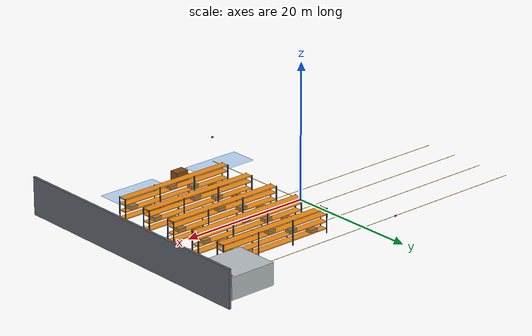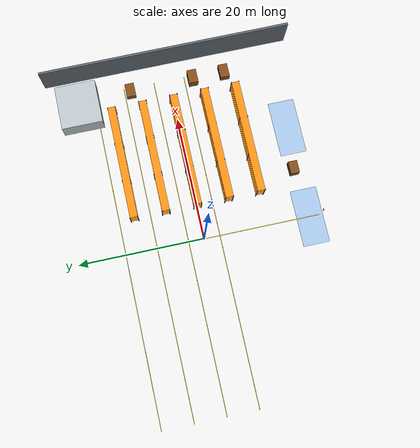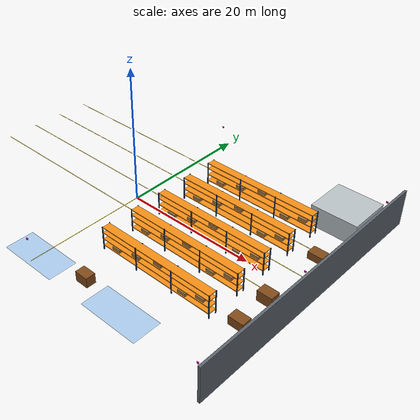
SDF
<sdf version="1.7">
 <world name="real_warehouse">
  <include><uri>model://sun</uri></include>
  <model name="east_wall">
   <static>true</static>
   <pose>30.0 0.0 2.75 0 0 0</pose>
   <link name="link">
    <collision name="collision">
     <geometry><box><size>0.35 40.0 5.5</size></box></geometry>
     <surface><friction><ode><mu>0.9</mu><mu2>0.9</mu2></ode></friction></surface>
    </collision>
    <visual name="visual">
     <geometry><box><size>0.35 40.0 5.5</size></box></geometry>
     <material><ambient>0.36 0.39 0.42 1</ambient><diffuse>0.36 0.39 0.42 1</diffuse></material>
    </visual>
   </link>
  </model>
  <model name="battery_room">
   <static>true</static>
   <pose>24.7 15.0 1.6 0 0 0</pose>
   <link name="link">
    <collision name="collision">
     <geometry><box><size>7.0 6.5 3.2</size></box></geometry>
     <surface><friction><ode><mu>0.9</mu><mu2>0.9</mu2></ode></friction></surface>
    </collision>
    <visual name="visual">
     <geometry><box><size>7.0 6.5 3.2</size></box></geometry>
     <material><ambient>0.72 0.75 0.77 1</ambient><diffuse>0.72 0.75 0.77 1</diffuse></material>
    </visual>
   </link>
  </model>
  <model name="rack_1_east">
   <static>true</static>
   <pose>14.0 -10.0 0 0 0 0</pose>
   <link name="rack">
    <collision name="rack_footprint">
     <pose>0 0 1.8 0 0 0</pose>
     <geometry><box><size>18.0 1.2 3.6</size></box></geometry>
    </collision>
    <visual name="upright_0_0">
     <pose>-9.0 -0.6 1.8 0 0 0</pose>
     <geometry><box><size>0.12 0.12 3.6</size></box></geometry>
     <material><ambient>0.12 0.24 0.42 1</ambient><diffuse>0.12 0.24 0.42 1</diffuse></material>
    </visual>
    <visual name="upright_0_1">
     <pose>-9.0 0.6 1.8 0 0 0</pose>
     <geometry><box><size>0.12 0.12 3.6</size></box></geometry>
     <material><ambient>0.12 0.24 0.42 1</ambient><diffuse>0.12 0.24 0.42 1</diffuse></material>
    </visual>
    <visual name="upright_1_0">
     <pose>-3.0 -0.6 1.8 0 0 0</pose>
     <geometry><box><size>0.12 0.12 3.6</size></box></geometry>
     <material><ambient>0.12 0.24 0.42 1</ambient><diffuse>0.12 0.24 0.42 1</diffuse></material>
    </visual>
    <visual name="upright_1_1">
     <pose>-3.0 0.6 1.8 0 0 0</pose>
     <geometry><box><size>0.12 0.12 3.6</size></box></geometry>
     <material><ambient>0.12 0.24 0.42 1</ambient><diffuse>0.12 0.24 0.42 1</diffuse></material>
    </visual>
    <visual name="upright_2_0">
     <pose>3.0 -0.6 1.8 0 0 0</pose>
     <geometry><box><size>0.12 0.12 3.6</size></box></geometry>
     <material><ambient>0.12 0.24 0.42 1</ambient><diffuse>0.12 0.24 0.42 1</diffuse></material>
    </visual>
    <visual name="upright_2_1">
     <pose>3.0 0.6 1.8 0 0 0</pose>
     <geometry><box><size>0.12 0.12 3.6</size></box></geometry>
     <material><ambient>0.12 0.24 0.42 1</ambient><diffuse>0.12 0.24 0.42 1</diffuse></material>
    </visual>
    <visual name="upright_3_0">
     <pose>9.0 -0.6 1.8 0 0 0</pose>
     <geometry><box><size>0.12 0.12 3.6</size></box></geometry>
     <material><ambient>0.12 0.24 0.42 1</ambient><diffuse>0.12 0.24 0.42 1</diffuse></material>
    </visual>
    <visual name="upright_3_1">
     <pose>9.0 0.6 1.8 0 0 0</pose>
     <geometry><box><size>0.12 0.12 3.6</size></box></geometry>
     <material><ambient>0.12 0.24 0.42 1</ambient><diffuse>0.12 0.24 0.42 1</diffuse></material>
    </visual>
    <visual name="beam_0">
     <pose>0 0 0.65 0 0 0</pose>
     <geometry><box><size>18.0 1.2 0.12</size></box></geometry>
     <material><ambient>0.95 0.55 0.08 1</ambient><diffuse>0.95 0.55 0.08 1</diffuse></material>
    </visual>
    <visual name="beam_1">
     <pose>0 0 1.65 0 0 0</pose>
     <geometry><box><size>18.0 1.2 0.12</size></box></geometry>
     <material><ambient>0.95 0.55 0.08 1</ambient><diffuse>0.95 0.55 0.08 1</diffuse></material>
    </visual>
    <visual name="beam_2">
     <pose>0 0 2.65 0 0 0</pose>
     <geometry><box><size>18.0 1.2 0.12</size></box></geometry>
     <material><ambient>0.95 0.55 0.08 1</ambient><diffuse>0.95 0.55 0.08 1</diffuse></material>
    </visual>
    <visual name="beam_3">
     <pose>0 0 3.5 0 0 0</pose>
     <geometry><box><size>18.0 1.2 0.12</size></box></geometry>
     <material><ambient>0.95 0.55 0.08 1</ambient><diffuse>0.95 0.55 0.08 1</diffuse></material>
    </visual>
    <visual name="load_0">
     <pose>-6.84 0 0.92 0 0 0</pose>
     <geometry><box><size>1.25 0.9359999999999999 0.48</size></box></geometry>
     <material><ambient>0.67 0.48 0.25 1</ambient><diffuse>0.67 0.48 0.25 1</diffuse></material>
    </visual>
    <visual name="load_1">
     <pose>-3.2399999999999998 0 1.92 0 0 0</pose>
     <geometry><box><size>1.25 0.9359999999999999 0.48</size></box></geometry>
     <material><ambient>0.67 0.48 0.25 1</ambient><diffuse>0.67 0.48 0.25 1</diffuse></material>
    </visual>
    <visual name="load_2">
     <pose>0.54 0 2.92 0 0 0</pose>
     <geometry><box><size>1.25 0.9359999999999999 0.48</size></box></geometry>
     <material><ambient>0.67 0.48 0.25 1</ambient><diffuse>0.67 0.48 0.25 1</diffuse></material>
    </visual>
    <visual name="load_3">
     <pose>4.5 0 0.92 0 0 0</pose>
     <geometry><box><size>1.25 0.9359999999999999 0.48</size></box></geometry>
     <material><ambient>0.67 0.48 0.25 1</ambient><diffuse>0.67 0.48 0.25 1</diffuse></material>
    </visual>
    <visual name="load_4">
     <pose>7.38 0 1.92 0 0 0</pose>
     <geometry><box><size>1.25 0.9359999999999999 0.48</size></box></geometry>
     <material><ambient>0.67 0.48 0.25 1</ambient><diffuse>0.67 0.48 0.25 1</diffuse></material>
    </visual>
   </link>
  </model>
  <model name="rack_2_east">
   <static>true</static>
   <pose>14.0 -5.0 0 0 0 0</pose>
   <link name="rack">
    <collision name="rack_footprint">
     <pose>0 0 1.8 0 0 0</pose>
     <geometry><box><size>18.0 1.2 3.6</size></box></geometry>
    </collision>
    <visual name="upright_0_0">
     <pose>-9.0 -0.6 1.8 0 0 0</pose>
     <geometry><box><size>0.12 0.12 3.6</size></box></geometry>
     <material><ambient>0.12 0.24 0.42 1</ambient><diffuse>0.12 0.24 0.42 1</diffuse></material>
    </visual>
    <visual name="upright_0_1">
     <pose>-9.0 0.6 1.8 0 0 0</pose>
     <geometry><box><size>0.12 0.12 3.6</size></box></geometry>
     <material><ambient>0.12 0.24 0.42 1</ambient><diffuse>0.12 0.24 0.42 1</diffuse></material>
    </visual>
    <visual name="upright_1_0">
     <pose>-3.0 -0.6 1.8 0 0 0</pose>
     <geometry><box><size>0.12 0.12 3.6</size></box></geometry>
     <material><ambient>0.12 0.24 0.42 1</ambient><diffuse>0.12 0.24 0.42 1</diffuse></material>
    </visual>
    <visual name="upright_1_1">
     <pose>-3.0 0.6 1.8 0 0 0</pose>
     <geometry><box><size>0.12 0.12 3.6</size></box></geometry>
     <material><ambient>0.12 0.24 0.42 1</ambient><diffuse>0.12 0.24 0.42 1</diffuse></material>
    </visual>
    <visual name="upright_2_0">
     <pose>3.0 -0.6 1.8 0 0 0</pose>
     <geometry><box><size>0.12 0.12 3.6</size></box></geometry>
     <material><ambient>0.12 0.24 0.42 1</ambient><diffuse>0.12 0.24 0.42 1</diffuse></material>
    </visual>
    <visual name="upright_2_1">
     <pose>3.0 0.6 1.8 0 0 0</pose>
     <geometry><box><size>0.12 0.12 3.6</size></box></geometry>
     <material><ambient>0.12 0.24 0.42 1</ambient><diffuse>0.12 0.24 0.42 1</diffuse></material>
    </visual>
    <visual name="upright_3_0">
     <pose>9.0 -0.6 1.8 0 0 0</pose>
     <geometry><box><size>0.12 0.12 3.6</size></box></geometry>
     <material><ambient>0.12 0.24 0.42 1</ambient><diffuse>0.12 0.24 0.42 1</diffuse></material>
    </visual>
    <visual name="upright_3_1">
     <pose>9.0 0.6 1.8 0 0 0</pose>
     <geometry><box><size>0.12 0.12 3.6</size></box></geometry>
     <material><ambient>0.12 0.24 0.42 1</ambient><diffuse>0.12 0.24 0.42 1</diffuse></material>
    </visual>
    <visual name="beam_0">
     <pose>0 0 0.65 0 0 0</pose>
     <geometry><box><size>18.0 1.2 0.12</size></box></geometry>
     <material><ambient>0.95 0.55 0.08 1</ambient><diffuse>0.95 0.55 0.08 1</diffuse></material>
    </visual>
    <visual name="beam_1">
     <pose>0 0 1.65 0 0 0</pose>
     <geometry><box><size>18.0 1.2 0.12</size></box></geometry>
     <material><ambient>0.95 0.55 0.08 1</ambient><diffuse>0.95 0.55 0.08 1</diffuse></material>
    </visual>
    <visual name="beam_2">
     <pose>0 0 2.65 0 0 0</pose>
     <geometry><box><size>18.0 1.2 0.12</size></box></geometry>
     <material><ambient>0.95 0.55 0.08 1</ambient><diffuse>0.95 0.55 0.08 1</diffuse></material>
    </visual>
    <visual name="beam_3">
     <pose>0 0 3.5 0 0 0</pose>
     <geometry><box><size>18.0 1.2 0.12</size></box></geometry>
     <material><ambient>0.95 0.55 0.08 1</ambient><diffuse>0.95 0.55 0.08 1</diffuse></material>
    </visual>
    <visual name="load_0">
     <pose>-6.84 0 0.92 0 0 0</pose>
     <geometry><box><size>1.25 0.9359999999999999 0.48</size></box></geometry>
     <material><ambient>0.67 0.48 0.25 1</ambient><diffuse>0.67 0.48 0.25 1</diffuse></material>
    </visual>
    <visual name="load_1">
     <pose>-3.2399999999999998 0 1.92 0 0 0</pose>
     <geometry><box><size>1.25 0.9359999999999999 0.48</size></box></geometry>
     <material><ambient>0.67 0.48 0.25 1</ambient><diffuse>0.67 0.48 0.25 1</diffuse></material>
    </visual>
    <visual name="load_2">
     <pose>0.54 0 2.92 0 0 0</pose>
     <geometry><box><size>1.25 0.9359999999999999 0.48</size></box></geometry>
     <material><ambient>0.67 0.48 0.25 1</ambient><diffuse>0.67 0.48 0.25 1</diffuse></material>
    </visual>
    <visual name="load_3">
     <pose>4.5 0 0.92 0 0 0</pose>
     <geometry><box><size>1.25 0.9359999999999999 0.48</size></box></geometry>
     <material><ambient>0.67 0.48 0.25 1</ambient><diffuse>0.67 0.48 0.25 1</diffuse></material>
    </visual>
    <visual name="load_4">
     <pose>7.38 0 1.92 0 0 0</pose>
     <geometry><box><size>1.25 0.9359999999999999 0.48</size></box></geometry>
     <material><ambient>0.67 0.48 0.25 1</ambient><diffuse>0.67 0.48 0.25 1</diffuse></material>
    </visual>
   </link>
  </model>
  <model name="rack_3_east">
   <static>true</static>
   <pose>14.0 0.0 0 0 0 0</pose>
   <link name="rack">
    <collision name="rack_footprint">
     <pose>0 0 1.8 0 0 0</pose>
     <geometry><box><size>18.0 1.2 3.6</size></box></geometry>
    </collision>
    <visual name="upright_0_0">
     <pose>-9.0 -0.6 1.8 0 0 0</pose>
     <geometry><box><size>0.12 0.12 3.6</size></box></geometry>
     <material><ambient>0.12 0.24 0.42 1</ambient><diffuse>0.12 0.24 0.42 1</diffuse></material>
    </visual>
    <visual name="upright_0_1">
     <pose>-9.0 0.6 1.8 0 0 0</pose>
     <geometry><box><size>0.12 0.12 3.6</size></box></geometry>
     <material><ambient>0.12 0.24 0.42 1</ambient><diffuse>0.12 0.24 0.42 1</diffuse></material>
    </visual>
    <visual name="upright_1_0">
     <pose>-3.0 -0.6 1.8 0 0 0</pose>
     <geometry><box><size>0.12 0.12 3.6</size></box></geometry>
     <material><ambient>0.12 0.24 0.42 1</ambient><diffuse>0.12 0.24 0.42 1</diffuse></material>
    </visual>
    <visual name="upright_1_1">
     <pose>-3.0 0.6 1.8 0 0 0</pose>
     <geometry><box><size>0.12 0.12 3.6</size></box></geometry>
     <material><ambient>0.12 0.24 0.42 1</ambient><diffuse>0.12 0.24 0.42 1</diffuse></material>
    </visual>
    <visual name="upright_2_0">
     <pose>3.0 -0.6 1.8 0 0 0</pose>
     <geometry><box><size>0.12 0.12 3.6</size></box></geometry>
     <material><ambient>0.12 0.24 0.42 1</ambient><diffuse>0.12 0.24 0.42 1</diffuse></material>
    </visual>
    <visual name="upright_2_1">
     <pose>3.0 0.6 1.8 0 0 0</pose>
     <geometry><box><size>0.12 0.12 3.6</size></box></geometry>
     <material><ambient>0.12 0.24 0.42 1</ambient><diffuse>0.12 0.24 0.42 1</diffuse></material>
    </visual>
    <visual name="upright_3_0">
     <pose>9.0 -0.6 1.8 0 0 0</pose>
     <geometry><box><size>0.12 0.12 3.6</size></box></geometry>
     <material><ambient>0.12 0.24 0.42 1</ambient><diffuse>0.12 0.24 0.42 1</diffuse></material>
    </visual>
    <visual name="upright_3_1">
     <pose>9.0 0.6 1.8 0 0 0</pose>
     <geometry><box><size>0.12 0.12 3.6</size></box></geometry>
     <material><ambient>0.12 0.24 0.42 1</ambient><diffuse>0.12 0.24 0.42 1</diffuse></material>
    </visual>
    <visual name="beam_0">
     <pose>0 0 0.65 0 0 0</pose>
     <geometry><box><size>18.0 1.2 0.12</size></box></geometry>
     <material><ambient>0.95 0.55 0.08 1</ambient><diffuse>0.95 0.55 0.08 1</diffuse></material>
    </visual>
    <visual name="beam_1">
     <pose>0 0 1.65 0 0 0</pose>
     <geometry><box><size>18.0 1.2 0.12</size></box></geometry>
     <material><ambient>0.95 0.55 0.08 1</ambient><diffuse>0.95 0.55 0.08 1</diffuse></material>
    </visual>
    <visual name="beam_2">
     <pose>0 0 2.65 0 0 0</pose>
     <geometry><box><size>18.0 1.2 0.12</size></box></geometry>
     <material><ambient>0.95 0.55 0.08 1</ambient><diffuse>0.95 0.55 0.08 1</diffuse></material>
    </visual>
    <visual name="beam_3">
     <pose>0 0 3.5 0 0 0</pose>
     <geometry><box><size>18.0 1.2 0.12</size></box></geometry>
     <material><ambient>0.95 0.55 0.08 1</ambient><diffuse>0.95 0.55 0.08 1</diffuse></material>
    </visual>
    <visual name="load_0">
     <pose>-6.84 0 0.92 0 0 0</pose>
     <geometry><box><size>1.25 0.9359999999999999 0.48</size></box></geometry>
     <material><ambient>0.67 0.48 0.25 1</ambient><diffuse>0.67 0.48 0.25 1</diffuse></material>
    </visual>
    <visual name="load_1">
     <pose>-3.2399999999999998 0 1.92 0 0 0</pose>
     <geometry><box><size>1.25 0.9359999999999999 0.48</size></box></geometry>
     <material><ambient>0.67 0.48 0.25 1</ambient><diffuse>0.67 0.48 0.25 1</diffuse></material>
    </visual>
    <visual name="load_2">
     <pose>0.54 0 2.92 0 0 0</pose>
     <geometry><box><size>1.25 0.9359999999999999 0.48</size></box></geometry>
     <material><ambient>0.67 0.48 0.25 1</ambient><diffuse>0.67 0.48 0.25 1</diffuse></material>
    </visual>
    <visual name="load_3">
     <pose>4.5 0 0.92 0 0 0</pose>
     <geometry><box><size>1.25 0.9359999999999999 0.48</size></box></geometry>
     <material><ambient>0.67 0.48 0.25 1</ambient><diffuse>0.67 0.48 0.25 1</diffuse></material>
    </visual>
    <visual name="load_4">
     <pose>7.38 0 1.92 0 0 0</pose>
     <geometry><box><size>1.25 0.9359999999999999 0.48</size></box></geometry>
     <material><ambient>0.67 0.48 0.25 1</ambient><diffuse>0.67 0.48 0.25 1</diffuse></material>
    </visual>
   </link>
  </model>
  <model name="rack_4_east">
   <static>true</static>
   <pose>14.0 5.0 0 0 0 0</pose>
   <link name="rack">
    <collision name="rack_footprint">
     <pose>0 0 1.8 0 0 0</pose>
     <geometry><box><size>18.0 1.2 3.6</size></box></geometry>
    </collision>
    <visual name="upright_0_0">
     <pose>-9.0 -0.6 1.8 0 0 0</pose>
     <geometry><box><size>0.12 0.12 3.6</size></box></geometry>
     <material><ambient>0.12 0.24 0.42 1</ambient><diffuse>0.12 0.24 0.42 1</diffuse></material>
    </visual>
    <visual name="upright_0_1">
     <pose>-9.0 0.6 1.8 0 0 0</pose>
     <geometry><box><size>0.12 0.12 3.6</size></box></geometry>
     <material><ambient>0.12 0.24 0.42 1</ambient><diffuse>0.12 0.24 0.42 1</diffuse></material>
    </visual>
    <visual name="upright_1_0">
     <pose>-3.0 -0.6 1.8 0 0 0</pose>
     <geometry><box><size>0.12 0.12 3.6</size></box></geometry>
     <material><ambient>0.12 0.24 0.42 1</ambient><diffuse>0.12 0.24 0.42 1</diffuse></material>
    </visual>
    <visual name="upright_1_1">
     <pose>-3.0 0.6 1.8 0 0 0</pose>
     <geometry><box><size>0.12 0.12 3.6</size></box></geometry>
     <material><ambient>0.12 0.24 0.42 1</ambient><diffuse>0.12 0.24 0.42 1</diffuse></material>
    </visual>
    <visual name="upright_2_0">
     <pose>3.0 -0.6 1.8 0 0 0</pose>
     <geometry><box><size>0.12 0.12 3.6</size></box></geometry>
     <material><ambient>0.12 0.24 0.42 1</ambient><diffuse>0.12 0.24 0.42 1</diffuse></material>
    </visual>
    <visual name="upright_2_1">
     <pose>3.0 0.6 1.8 0 0 0</pose>
     <geometry><box><size>0.12 0.12 3.6</size></box></geometry>
     <material><ambient>0.12 0.24 0.42 1</ambient><diffuse>0.12 0.24 0.42 1</diffuse></material>
    </visual>
    <visual name="upright_3_0">
     <pose>9.0 -0.6 1.8 0 0 0</pose>
     <geometry><box><size>0.12 0.12 3.6</size></box></geometry>
     <material><ambient>0.12 0.24 0.42 1</ambient><diffuse>0.12 0.24 0.42 1</diffuse></material>
    </visual>
    <visual name="upright_3_1">
     <pose>9.0 0.6 1.8 0 0 0</pose>
     <geometry><box><size>0.12 0.12 3.6</size></box></geometry>
     <material><ambient>0.12 0.24 0.42 1</ambient><diffuse>0.12 0.24 0.42 1</diffuse></material>
    </visual>
    <visual name="beam_0">
     <pose>0 0 0.65 0 0 0</pose>
     <geometry><box><size>18.0 1.2 0.12</size></box></geometry>
     <material><ambient>0.95 0.55 0.08 1</ambient><diffuse>0.95 0.55 0.08 1</diffuse></material>
    </visual>
    <visual name="beam_1">
     <pose>0 0 1.65 0 0 0</pose>
     <geometry><box><size>18.0 1.2 0.12</size></box></geometry>
     <material><ambient>0.95 0.55 0.08 1</ambient><diffuse>0.95 0.55 0.08 1</diffuse></material>
    </visual>
    <visual name="beam_2">
     <pose>0 0 2.65 0 0 0</pose>
     <geometry><box><size>18.0 1.2 0.12</size></box></geometry>
     <material><ambient>0.95 0.55 0.08 1</ambient><diffuse>0.95 0.55 0.08 1</diffuse></material>
    </visual>
    <visual name="beam_3">
     <pose>0 0 3.5 0 0 0</pose>
     <geometry><box><size>18.0 1.2 0.12</size></box></geometry>
     <material><ambient>0.95 0.55 0.08 1</ambient><diffuse>0.95 0.55 0.08 1</diffuse></material>
    </visual>
    <visual name="load_0">
     <pose>-6.84 0 0.92 0 0 0</pose>
     <geometry><box><size>1.25 0.9359999999999999 0.48</size></box></geometry>
     <material><ambient>0.67 0.48 0.25 1</ambient><diffuse>0.67 0.48 0.25 1</diffuse></material>
    </visual>
    <visual name="load_1">
     <pose>-3.2399999999999998 0 1.92 0 0 0</pose>
     <geometry><box><size>1.25 0.9359999999999999 0.48</size></box></geometry>
     <material><ambient>0.67 0.48 0.25 1</ambient><diffuse>0.67 0.48 0.25 1</diffuse></material>
    </visual>
    <visual name="load_2">
     <pose>0.54 0 2.92 0 0 0</pose>
     <geometry><box><size>1.25 0.9359999999999999 0.48</size></box></geometry>
     <material><ambient>0.67 0.48 0.25 1</ambient><diffuse>0.67 0.48 0.25 1</diffuse></material>
    </visual>
    <visual name="load_3">
     <pose>4.5 0 0.92 0 0 0</pose>
     <geometry><box><size>1.25 0.9359999999999999 0.48</size></box></geometry>
     <material><ambient>0.67 0.48 0.25 1</ambient><diffuse>0.67 0.48 0.25 1</diffuse></material>
    </visual>
    <visual name="load_4">
     <pose>7.38 0 1.92 0 0 0</pose>
     <geometry><box><size>1.25 0.9359999999999999 0.48</size></box></geometry>
     <material><ambient>0.67 0.48 0.25 1</ambient><diffuse>0.67 0.48 0.25 1</diffuse></material>
    </visual>
   </link>
  </model>
  <model name="rack_5_east">
   <static>true</static>
   <pose>14.0 10.0 0 0 0 0</pose>
   <link name="rack">
    <collision name="rack_footprint">
     <pose>0 0 1.8 0 0 0</pose>
     <geometry><box><size>18.0 1.2 3.6</size></box></geometry>
    </collision>
    <visual name="upright_0_0">
     <pose>-9.0 -0.6 1.8 0 0 0</pose>
     <geometry><box><size>0.12 0.12 3.6</size></box></geometry>
     <material><ambient>0.12 0.24 0.42 1</ambient><diffuse>0.12 0.24 0.42 1</diffuse></material>
    </visual>
    <visual name="upright_0_1">
     <pose>-9.0 0.6 1.8 0 0 0</pose>
     <geometry><box><size>0.12 0.12 3.6</size></box></geometry>
     <material><ambient>0.12 0.24 0.42 1</ambient><diffuse>0.12 0.24 0.42 1</diffuse></material>
    </visual>
    <visual name="upright_1_0">
     <pose>-3.0 -0.6 1.8 0 0 0</pose>
     <geometry><box><size>0.12 0.12 3.6</size></box></geometry>
     <material><ambient>0.12 0.24 0.42 1</ambient><diffuse>0.12 0.24 0.42 1</diffuse></material>
    </visual>
    <visual name="upright_1_1">
     <pose>-3.0 0.6 1.8 0 0 0</pose>
     <geometry><box><size>0.12 0.12 3.6</size></box></geometry>
     <material><ambient>0.12 0.24 0.42 1</ambient><diffuse>0.12 0.24 0.42 1</diffuse></material>
    </visual>
    <visual name="upright_2_0">
     <pose>3.0 -0.6 1.8 0 0 0</pose>
     <geometry><box><size>0.12 0.12 3.6</size></box></geometry>
     <material><ambient>0.12 0.24 0.42 1</ambient><diffuse>0.12 0.24 0.42 1</diffuse></material>
    </visual>
    <visual name="upright_2_1">
     <pose>3.0 0.6 1.8 0 0 0</pose>
     <geometry><box><size>0.12 0.12 3.6</size></box></geometry>
     <material><ambient>0.12 0.24 0.42 1</ambient><diffuse>0.12 0.24 0.42 1</diffuse></material>
    </visual>
    <visual name="upright_3_0">
     <pose>9.0 -0.6 1.8 0 0 0</pose>
     <geometry><box><size>0.12 0.12 3.6</size></box></geometry>
     <material><ambient>0.12 0.24 0.42 1</ambient><diffuse>0.12 0.24 0.42 1</diffuse></material>
    </visual>
    <visual name="upright_3_1">
     <pose>9.0 0.6 1.8 0 0 0</pose>
     <geometry><box><size>0.12 0.12 3.6</size></box></geometry>
     <material><ambient>0.12 0.24 0.42 1</ambient><diffuse>0.12 0.24 0.42 1</diffuse></material>
    </visual>
    <visual name="beam_0">
     <pose>0 0 0.65 0 0 0</pose>
     <geometry><box><size>18.0 1.2 0.12</size></box></geometry>
     <material><ambient>0.95 0.55 0.08 1</ambient><diffuse>0.95 0.55 0.08 1</diffuse></material>
    </visual>
    <visual name="beam_1">
     <pose>0 0 1.65 0 0 0</pose>
     <geometry><box><size>18.0 1.2 0.12</size></box></geometry>
     <material><ambient>0.95 0.55 0.08 1</ambient><diffuse>0.95 0.55 0.08 1</diffuse></material>
    </visual>
    <visual name="beam_2">
     <pose>0 0 2.65 0 0 0</pose>
     <geometry><box><size>18.0 1.2 0.12</size></box></geometry>
     <material><ambient>0.95 0.55 0.08 1</ambient><diffuse>0.95 0.55 0.08 1</diffuse></material>
    </visual>
    <visual name="beam_3">
     <pose>0 0 3.5 0 0 0</pose>
     <geometry><box><size>18.0 1.2 0.12</size></box></geometry>
     <material><ambient>0.95 0.55 0.08 1</ambient><diffuse>0.95 0.55 0.08 1</diffuse></material>
    </visual>
    <visual name="load_0">
     <pose>-6.84 0 0.92 0 0 0</pose>
     <geometry><box><size>1.25 0.9359999999999999 0.48</size></box></geometry>
     <material><ambient>0.67 0.48 0.25 1</ambient><diffuse>0.67 0.48 0.25 1</diffuse></material>
    </visual>
    <visual name="load_1">
     <pose>-3.2399999999999998 0 1.92 0 0 0</pose>
     <geometry><box><size>1.25 0.9359999999999999 0.48</size></box></geometry>
     <material><ambient>0.67 0.48 0.25 1</ambient><diffuse>0.67 0.48 0.25 1</diffuse></material>
    </visual>
    <visual name="load_2">
     <pose>0.54 0 2.92 0 0 0</pose>
     <geometry><box><size>1.25 0.9359999999999999 0.48</size></box></geometry>
     <material><ambient>0.67 0.48 0.25 1</ambient><diffuse>0.67 0.48 0.25 1</diffuse></material>
    </visual>
    <visual name="load_3">
     <pose>4.5 0 0.92 0 0 0</pose>
     <geometry><box><size>1.25 0.9359999999999999 0.48</size></box></geometry>
     <material><ambient>0.67 0.48 0.25 1</ambient><diffuse>0.67 0.48 0.25 1</diffuse></material>
    </visual>
    <visual name="load_4">
     <pose>7.38 0 1.92 0 0 0</pose>
     <geometry><box><size>1.25 0.9359999999999999 0.48</size></box></geometry>
     <material><ambient>0.67 0.48 0.25 1</ambient><diffuse>0.67 0.48 0.25 1</diffuse></material>
    </visual>
   </link>
  </model>
  <model name="pallet_east_1">
   <static>true</static>
   <pose>26.2 -9.0 0.65 0 0 0</pose>
   <link name="link">
    <collision name="collision">
     <geometry><box><size>2.2 1.5 1.3</size></box></geometry>
     <surface><friction><ode><mu>0.9</mu><mu2>0.9</mu2></ode></friction></surface>
    </collision>
    <visual name="visual">
     <geometry><box><size>2.2 1.5 1.3</size></box></geometry>
     <material><ambient>0.50 0.29 0.10 1</ambient><diffuse>0.50 0.29 0.10 1</diffuse></material>
    </visual>
   </link>
  </model>
  <model name="pallet_east_2">
   <static>true</static>
   <pose>26.2 -3.8 0.8 0 0 0</pose>
   <link name="link">
    <collision name="collision">
     <geometry><box><size>2.2 1.5 1.6</size></box></geometry>
     <surface><friction><ode><mu>0.9</mu><mu2>0.9</mu2></ode></friction></surface>
    </collision>
    <visual name="visual">
     <geometry><box><size>2.2 1.5 1.6</size></box></geometry>
     <material><ambient>0.50 0.29 0.10 1</ambient><diffuse>0.50 0.29 0.10 1</diffuse></material>
    </visual>
   </link>
  </model>
  <model name="pallet_east_3">
   <static>true</static>
   <pose>26.2 6.5 0.55 0 0 0</pose>
   <link name="link">
    <collision name="collision">
     <geometry><box><size>2.2 1.5 1.1</size></box></geometry>
     <surface><friction><ode><mu>0.9</mu><mu2>0.9</mu2></ode></friction></surface>
    </collision>
    <visual name="visual">
     <geometry><box><size>2.2 1.5 1.1</size></box></geometry>
     <material><ambient>0.50 0.29 0.10 1</ambient><diffuse>0.50 0.29 0.10 1</diffuse></material>
    </visual>
   </link>
  </model>
  <model name="staging_pallet_2">
   <static>true</static>
   <pose>8.0 -16.2 0.75 0 0 0</pose>
   <link name="link">
    <collision name="collision">
     <geometry><box><size>2.0 1.4 1.5</size></box></geometry>
     <surface><friction><ode><mu>0.9</mu><mu2>0.9</mu2></ode></friction></surface>
    </collision>
    <visual name="visual">
     <geometry><box><size>2.0 1.4 1.5</size></box></geometry>
     <material><ambient>0.50 0.29 0.10 1</ambient><diffuse>0.50 0.29 0.10 1</diffuse></material>
    </visual>
   </link>
  </model>
  <model name="aisle_line_m2_5">
   <static>true</static>
   <pose>0.0 -2.5 0.012 0 0 0</pose>
   <link name="marking">
    <visual name="visual">
     <geometry><box><size>54.0 0.08 0.012</size></box></geometry>
     <material><ambient>0.95 0.82 0.10 0.9</ambient><diffuse>0.95 0.82 0.10 0.9</diffuse></material>
    </visual>
   </link>
  </model>
  <model name="aisle_line_2_5">
   <static>true</static>
   <pose>0.0 2.5 0.012 0 0 0</pose>
   <link name="marking">
    <visual name="visual">
     <geometry><box><size>54.0 0.08 0.012</size></box></geometry>
     <material><ambient>0.95 0.82 0.10 0.9</ambient><diffuse>0.95 0.82 0.10 0.9</diffuse></material>
    </visual>
   </link>
  </model>
  <model name="aisle_line_7_5">
   <static>true</static>
   <pose>0.0 7.5 0.012 0 0 0</pose>
   <link name="marking">
    <visual name="visual">
     <geometry><box><size>54.0 0.08 0.012</size></box></geometry>
     <material><ambient>0.95 0.82 0.10 0.9</ambient><diffuse>0.95 0.82 0.10 0.9</diffuse></material>
    </visual>
   </link>
  </model>
  <model name="aisle_line_12_5">
   <static>true</static>
   <pose>0.0 12.5 0.012 0 0 0</pose>
   <link name="marking">
    <visual name="visual">
     <geometry><box><size>54.0 0.08 0.012</size></box></geometry>
     <material><ambient>0.95 0.82 0.10 0.9</ambient><diffuse>0.95 0.82 0.10 0.9</diffuse></material>
    </visual>
   </link>
  </model>
  <model name="central_cross_aisle">
   <static>true</static>
   <pose>0.0 0.0 0.012 0 0 0</pose>
   <link name="marking">
    <visual name="visual">
     <geometry><box><size>0.1 37.0 0.012</size></box></geometry>
     <material><ambient>0.95 0.82 0.10 0.9</ambient><diffuse>0.95 0.82 0.10 0.9</diffuse></material>
    </visual>
   </link>
  </model>
  <model name="loading_bay_2">
   <static>true</static>
   <pose>0.0 -17.0 0.012 0 0 0</pose>
   <link name="marking">
    <visual name="visual">
     <geometry><box><size>9.0 4.2 0.012</size></box></geometry>
     <material><ambient>0.10 0.48 0.88 0.32</ambient><diffuse>0.10 0.48 0.88 0.32</diffuse></material>
    </visual>
   </link>
  </model>
  <model name="loading_bay_3">
   <static>true</static>
   <pose>15.0 -17.0 0.012 0 0 0</pose>
   <link name="marking">
    <visual name="visual">
     <geometry><box><size>9.0 4.2 0.012</size></box></geometry>
     <material><ambient>0.10 0.48 0.88 0.32</ambient><diffuse>0.10 0.48 0.88 0.32</diffuse></material>
    </visual>
   </link>
  </model>
  <model name="uwb_anchor_s">
   <static>true</static>
   <pose>0.0 -18.5 3.6 0 0 0</pose>
   <link name="tag">
    <visual name="body">
     <geometry><box><size>0.28 0.12 0.20</size></box></geometry>
     <material><ambient>0.92 0.12 0.82 1</ambient><diffuse>0.92 0.12 0.82 1</diffuse></material>
    </visual>
   </link>
  </model>
  <model name="uwb_anchor_se">
   <static>true</static>
   <pose>28.5 -18.5 3.6 0 0 0</pose>
   <link name="tag">
    <visual name="body">
     <geometry><box><size>0.28 0.12 0.20</size></box></geometry>
     <material><ambient>0.92 0.12 0.82 1</ambient><diffuse>0.92 0.12 0.82 1</diffuse></material>
    </visual>
   </link>
  </model>
  <model name="uwb_anchor_e">
   <static>true</static>
   <pose>28.5 0.0 3.6 0 0 0</pose>
   <link name="tag">
    <visual name="body">
     <geometry><box><size>0.28 0.12 0.20</size></box></geometry>
     <material><ambient>0.92 0.12 0.82 1</ambient><diffuse>0.92 0.12 0.82 1</diffuse></material>
    </visual>
   </link>
  </model>
  <model name="uwb_anchor_n">
   <static>true</static>
   <pose>0.0 18.5 3.6 0 0 0</pose>
   <link name="tag">
    <visual name="body">
     <geometry><box><size>0.28 0.12 0.20</size></box></geometry>
     <material><ambient>0.92 0.12 0.82 1</ambient><diffuse>0.92 0.12 0.82 1</diffuse></material>
    </visual>
   </link>
  </model>
  <model name="uwb_anchor_ne">
   <static>true</static>
   <pose>28.5 18.5 3.6 0 0 0</pose>
   <link name="tag">
    <visual name="body">
     <geometry><box><size>0.28 0.12 0.20</size></box></geometry>
     <material><ambient>0.92 0.12 0.82 1</ambient><diffuse>0.92 0.12 0.82 1</diffuse></material>
    </visual>
   </link>
  </model>
 </world>
</sdf>
